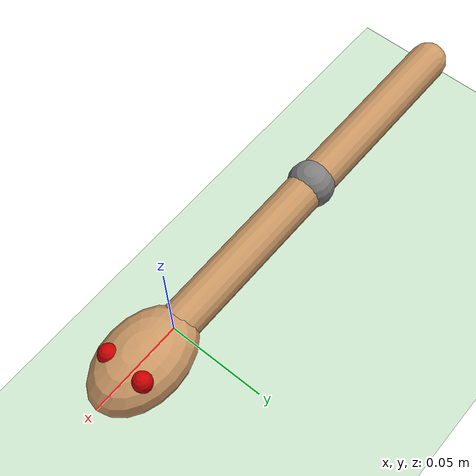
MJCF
<mujoco model="swimmer_position">
    <compiler angle="degree" coordinate="local" inertiafromgeom="true"/>
    <!--    water   -->
    <option collision="predefined" density="1000" timestep="0.01" viscosity="0.0009"/>
    <!--    oil                                                 absolute/dynamic   -->
    <!--    ethanol   -->
    <visual>
        <quality shadowsize="0"/>
    </visual>
    <default>
        <geom conaffinity="1" condim="1" contype="1" material="geom" rgba="0.8 0.6 .4 1"/>
        <default class="mid">
            <site pos="-0.05 0 0" size="0.01"/>
        </default>
        <default class="joint_mark">
            <site pos="0 0 0" size="0.012"/>
        </default>
        <default class="j">
            <joint axis="0 0 1" limited="true" pos="0 0 0" range="-90 90" type="hinge" armature='0.01' damping="0.01" stiffness="0"/>
        </default>
        <default class="g">
            <geom density="1000" fromto="0 0 0 -0.1 0 0" size="0.01" type="capsule"/>
        </default>
    </default>
    <asset>
        <texture builtin="gradient" height="100" rgb1="1 1 1" rgb2="0 0 0" type="skybox" width="100"/>
        <texture builtin="flat" height="1278" mark="cross" markrgb="1 1 1" name="texgeom" random="0.01"
                 rgb1="0.8 0.6 0.4" rgb2="0.8 0.6 0.4" type="cube" width="127"/>
<!--      backgroud  color-->
        <texture builtin="checker" height="100" name="texplane" rgb1="1 1 1" rgb2="1 1 1" type="2d" width="100"/>
        <material name="MatPlane" reflectance="0.5" shininess="1" specular="1" texrepeat="50 50" texture="texplane"/>
        <material name="geom" texture="texgeom" texuniform="true"/>
    </asset>
    <worldbody>
        <light cutoff="100" diffuse="1 1 1" dir="-0 0 -1.3" directional="true" exponent="1" pos="0 0 1.3"
               specular=".1 .1 .1"/>
        <geom conaffinity="1" condim="3" material="MatPlane" name="floor" pos="0 0 -0.1" rgba="0.8 0.9 0.8 1"
              size="5 5 0.01" type="plane"/>
        <!--  ================= SWIMMER ================= /-->

        <body name="torso" pos="0 0 0">
            <camera name="track" mode="trackcom" pos="-0.3 -1.5 1.5" xyaxes="1 0 0 0 1 1"/>
            <geom name="head" type="ellipsoid" size=".03 .02 .015" pos="0.02 0 0" mass="0" axisangle="30 30 30 0"/>
            <geom name="eyes1" type="capsule" fromto="0.03 0.01 0 0.03 0.01 0.01" size=".005" rgba="0.8 0 0 1"/>
            <geom name="eyes2" type="capsule" fromto="0.03 -0.01 0 0.03 -0.01 0.01" size=".005" rgba="0.8 0 0 1"/>
            <geom class="g"/>
            <site name="head" class="mid"/>
            <site name="p1" pos="0 0 0" size="0.001"/>
            <body name="body1" pos="-.1 0 0">
                <geom class="g"/>
                <joint class="j" name="rot1"/>
                <site name="site1" class="mid"/>
                <site name="p2" class="joint_mark"/>
            </body>
        </body>
    </worldbody>

    <sensor>
        <gyro name="gyro1" site="site1"/>

        <framepos objtype="site" objname="head"/>
        <framepos objtype="site" objname="site1"/>

    </sensor>

    <actuator>
        <position ctrllimited="true" ctrlrange="-1 1" forcelimited="true" forcerange="-0.1 0.1" kp="1" gear="1" joint="rot1"/>
    </actuator>
</mujoco>
